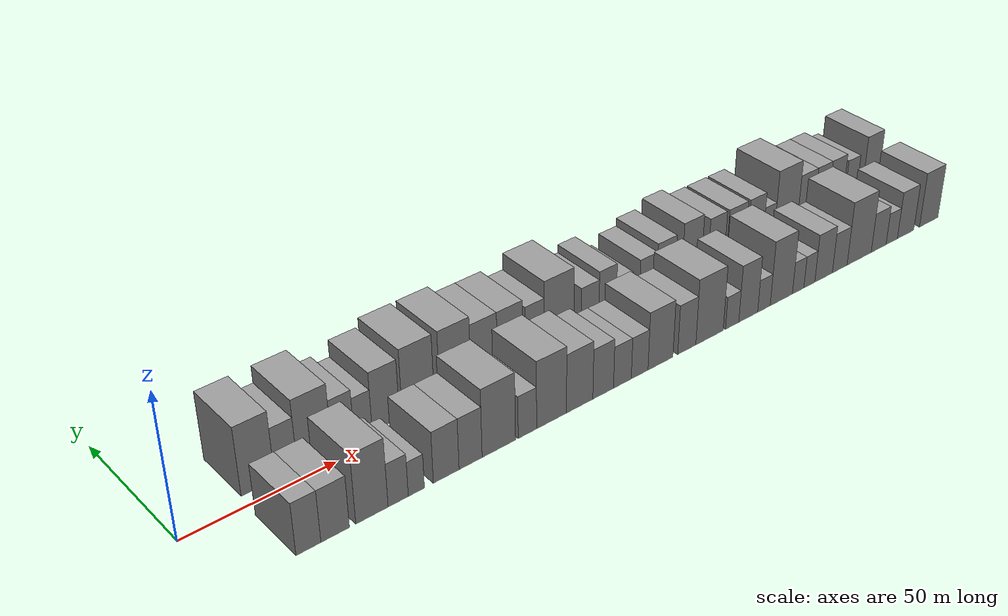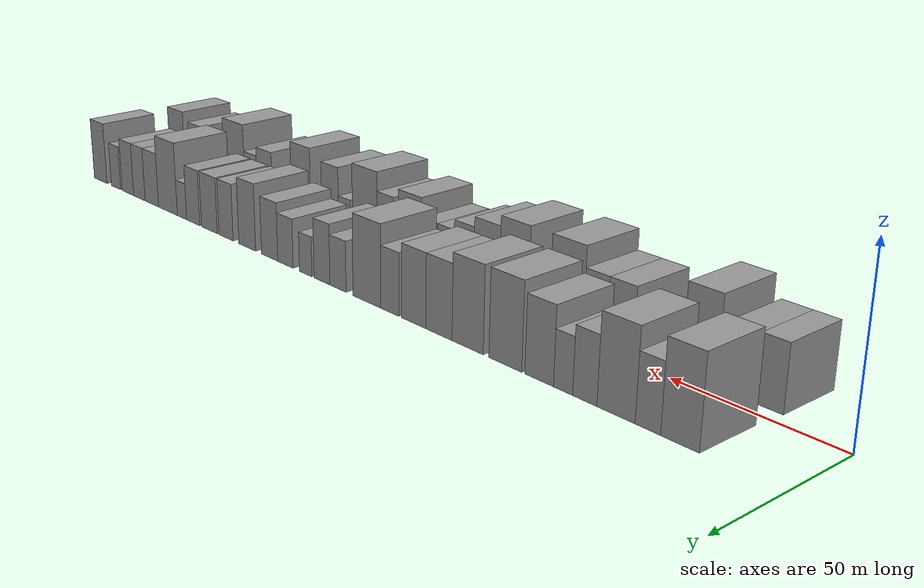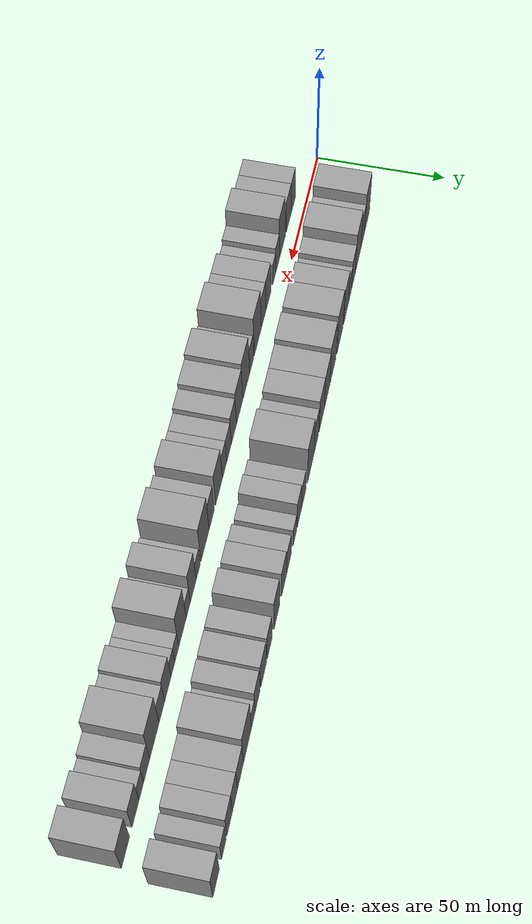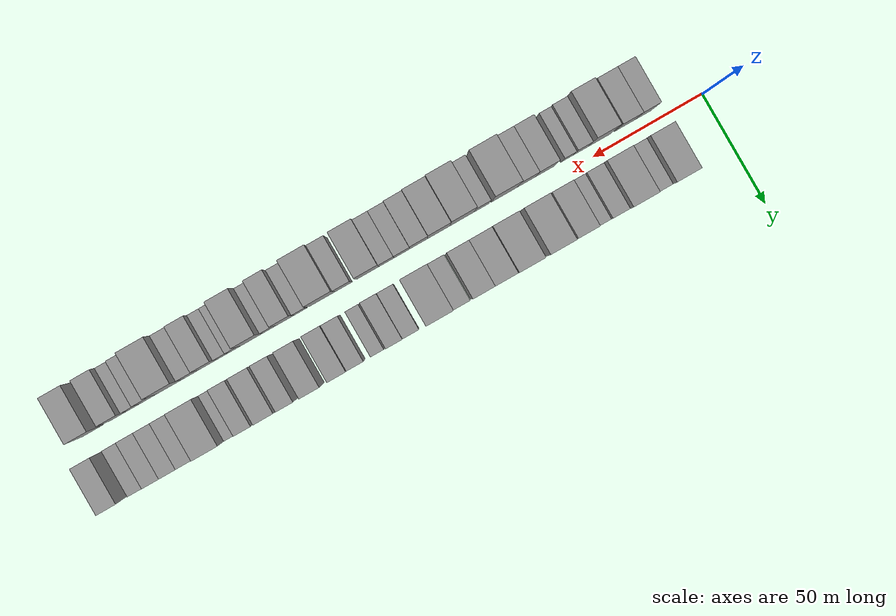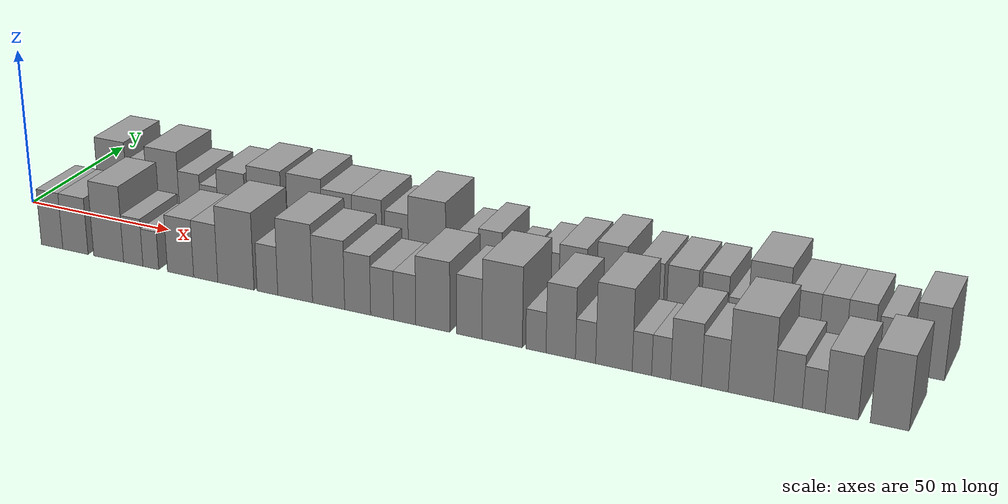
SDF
<sdf version="1.6">
 <world name="default">
  <scene>
   <sky><clouds><speed>12</speed></clouds></sky>
   <ambient>0.4 0.4 0.4 1</ambient>
   <background>0.7 0.7 0.7 1</background>
   <shadows>1</shadows>
  </scene>
  <gravity>0 0 -9.8066</gravity>
  <magnetic_field>6e-06 2.3e-05 -4.2e-05</magnetic_field>
  <physics default="0" name="default_physics" type="ode">
   <ode>
    <solver>
     <type>quick</type>
     <iters>10</iters>
     <sor>1.0</sor>
     <use_dynamic_moi_rescaling>0</use_dynamic_moi_rescaling>
    </solver>
    <constraints>
     <cfm>0</cfm>
     <erp>0.2</erp>
     <contact_max_correcting_vel>100</contact_max_correcting_vel>
     <contact_surface_layer>0.001</contact_surface_layer>
    </constraints>
   </ode>
   <max_step_size>0.004</max_step_size>
   <real_time_factor>1</real_time_factor>
   <real_time_update_rate>250</real_time_update_rate>
  </physics>
  <light name="sun" type="directional">
   <pose>0 0 10 0 0 0</pose>
   <diffuse>0.8 0.8 0.8 1</diffuse>
   <specular>0.2 0.2 0.2 1</specular>
   <attenuation>
    <range>1000</range>
    <constant>0.9</constant>
    <linear>0.01</linear>
    <quadratic>0.001</quadratic>
   </attenuation>
   <direction>-0.5 0.1 -0.9</direction>
  </light>
  <model name="building_1">
   <static>1</static>
   <pose>27.3456 14.5000 0 0.000000 0.000000 1.570796</pose>
   <link name="link">
    <pose>0 0 12.00 0 0 0</pose>
    <collision name="collision"><geometry><box><size>20.0000 10.6911 24.0000</size></box></geometry></collision>
    <visual name="visual">
     <cast_shadows>0</cast_shadows>
     <geometry><box><size>20.0000 10.6911 24.0000</size></box></geometry>
     <material>
      <script>
       <uri>model://grey_wall/materials/scripts</uri>
       <uri>model://grey_wall/materials/textures</uri>
       <name>vrc/grey_wall</name>
      </script>
     </material>
    </visual>
   </link>
  </model>
  <model name="building_2">
   <static>1</static>
   <pose>36.3356 14.5000 0 0.000000 0.000000 1.570796</pose>
   <link name="link">
    <pose>0 0 9.00 0 0 0</pose>
    <collision name="collision"><geometry><box><size>20.0000 7.2890 18.0000</size></box></geometry></collision>
    <visual name="visual">
     <cast_shadows>0</cast_shadows>
     <geometry><box><size>20.0000 7.2890 18.0000</size></box></geometry>
     <material>
      <script>
       <uri>model://grey_wall/materials/scripts</uri>
       <uri>model://grey_wall/materials/textures</uri>
       <name>vrc/grey_wall</name>
      </script>
     </material>
    </visual>
   </link>
  </model>
  <model name="building_3">
   <static>1</static>
   <pose>45.6819 14.5000 0 0.000000 0.000000 1.570796</pose>
   <link name="link">
    <pose>0 0 12.00 0 0 0</pose>
    <collision name="collision"><geometry><box><size>20.0000 11.4037 24.0000</size></box></geometry></collision>
    <visual name="visual">
     <cast_shadows>0</cast_shadows>
     <geometry><box><size>20.0000 11.4037 24.0000</size></box></geometry>
     <material>
      <script>
       <uri>model://grey_wall/materials/scripts</uri>
       <uri>model://grey_wall/materials/textures</uri>
       <name>vrc/grey_wall</name>
      </script>
     </material>
    </visual>
   </link>
  </model>
  <model name="building_4">
   <static>1</static>
   <pose>55.1578 14.5000 0 0.000000 0.000000 1.570796</pose>
   <link name="link">
    <pose>0 0 9.00 0 0 0</pose>
    <collision name="collision"><geometry><box><size>20.0000 7.5482 18.0000</size></box></geometry></collision>
    <visual name="visual">
     <cast_shadows>0</cast_shadows>
     <geometry><box><size>20.0000 7.5482 18.0000</size></box></geometry>
     <material>
      <script>
       <uri>model://grey_wall/materials/scripts</uri>
       <uri>model://grey_wall/materials/textures</uri>
       <name>vrc/grey_wall</name>
      </script>
     </material>
    </visual>
   </link>
  </model>
  <model name="building_5">
   <static>1</static>
   <pose>61.9954 14.5000 0 0.000000 0.000000 1.570796</pose>
   <link name="link">
    <pose>0 0 7.50 0 0 0</pose>
    <collision name="collision"><geometry><box><size>20.0000 6.1270 15.0000</size></box></geometry></collision>
    <visual name="visual">
     <cast_shadows>0</cast_shadows>
     <geometry><box><size>20.0000 6.1270 15.0000</size></box></geometry>
     <material>
      <script>
       <uri>model://grey_wall/materials/scripts</uri>
       <uri>model://grey_wall/materials/textures</uri>
       <name>vrc/grey_wall</name>
      </script>
     </material>
    </visual>
   </link>
  </model>
  <model name="building_6">
   <static>1</static>
   <pose>69.8138 14.5000 0 0.000000 0.000000 1.570796</pose>
   <link name="link">
    <pose>0 0 10.50 0 0 0</pose>
    <collision name="collision"><geometry><box><size>20.0000 9.5098 21.0000</size></box></geometry></collision>
    <visual name="visual">
     <cast_shadows>0</cast_shadows>
     <geometry><box><size>20.0000 9.5098 21.0000</size></box></geometry>
     <material>
      <script>
       <uri>model://grey_wall/materials/scripts</uri>
       <uri>model://grey_wall/materials/textures</uri>
       <name>vrc/grey_wall</name>
      </script>
     </material>
    </visual>
   </link>
  </model>
  <model name="building_7">
   <static>1</static>
   <pose>81.2880 14.5000 0 0.000000 0.000000 1.570796</pose>
   <link name="link">
    <pose>0 0 12.00 0 0 0</pose>
    <collision name="collision"><geometry><box><size>20.0000 11.4387 24.0000</size></box></geometry></collision>
    <visual name="visual">
     <cast_shadows>0</cast_shadows>
     <geometry><box><size>20.0000 11.4387 24.0000</size></box></geometry>
     <material>
      <script>
       <uri>model://grey_wall/materials/scripts</uri>
       <uri>model://grey_wall/materials/textures</uri>
       <name>vrc/grey_wall</name>
      </script>
     </material>
    </visual>
   </link>
  </model>
  <model name="building_8">
   <static>1</static>
   <pose>94.7496 14.5000 0 0.000000 0.000000 1.570796</pose>
   <link name="link">
    <pose>0 0 12.00 0 0 0</pose>
    <collision name="collision"><geometry><box><size>20.0000 11.4844 24.0000</size></box></geometry></collision>
    <visual name="visual">
     <cast_shadows>0</cast_shadows>
     <geometry><box><size>20.0000 11.4844 24.0000</size></box></geometry>
     <material>
      <script>
       <uri>model://grey_wall/materials/scripts</uri>
       <uri>model://grey_wall/materials/textures</uri>
       <name>vrc/grey_wall</name>
      </script>
     </material>
    </visual>
   </link>
  </model>
  <model name="building_9">
   <static>1</static>
   <pose>105.5024 14.5000 0 0.000000 0.000000 1.570796</pose>
   <link name="link">
    <pose>0 0 10.50 0 0 0</pose>
    <collision name="collision"><geometry><box><size>20.0000 10.0213 21.0000</size></box></geometry></collision>
    <visual name="visual">
     <cast_shadows>0</cast_shadows>
     <geometry><box><size>20.0000 10.0213 21.0000</size></box></geometry>
     <material>
      <script>
       <uri>model://grey_wall/materials/scripts</uri>
       <uri>model://grey_wall/materials/textures</uri>
       <name>vrc/grey_wall</name>
      </script>
     </material>
    </visual>
   </link>
  </model>
  <model name="building_10">
   <static>1</static>
   <pose>115.3661 14.5000 0 0.000000 0.000000 1.570796</pose>
   <link name="link">
    <pose>0 0 10.50 0 0 0</pose>
    <collision name="collision"><geometry><box><size>20.0000 9.7060 21.0000</size></box></geometry></collision>
    <visual name="visual">
     <cast_shadows>0</cast_shadows>
     <geometry><box><size>20.0000 9.7060 21.0000</size></box></geometry>
     <material>
      <script>
       <uri>model://grey_wall/materials/scripts</uri>
       <uri>model://grey_wall/materials/textures</uri>
       <name>vrc/grey_wall</name>
      </script>
     </material>
    </visual>
   </link>
  </model>
  <model name="building_11">
   <static>1</static>
   <pose>124.9737 14.5000 0 0.000000 0.000000 1.570796</pose>
   <link name="link">
    <pose>0 0 9.00 0 0 0</pose>
    <collision name="collision"><geometry><box><size>20.0000 7.5093 18.0000</size></box></geometry></collision>
    <visual name="visual">
     <cast_shadows>0</cast_shadows>
     <geometry><box><size>20.0000 7.5093 18.0000</size></box></geometry>
     <material>
      <script>
       <uri>model://grey_wall/materials/scripts</uri>
       <uri>model://grey_wall/materials/textures</uri>
       <name>vrc/grey_wall</name>
      </script>
     </material>
    </visual>
   </link>
  </model>
  <model name="building_12">
   <static>1</static>
   <pose>134.6609 14.5000 0 0.000000 0.000000 1.570796</pose>
   <link name="link">
    <pose>0 0 12.00 0 0 0</pose>
    <collision name="collision"><geometry><box><size>20.0000 11.8650 24.0000</size></box></geometry></collision>
    <visual name="visual">
     <cast_shadows>0</cast_shadows>
     <geometry><box><size>20.0000 11.8650 24.0000</size></box></geometry>
     <material>
      <script>
       <uri>model://grey_wall/materials/scripts</uri>
       <uri>model://grey_wall/materials/textures</uri>
       <name>vrc/grey_wall</name>
      </script>
     </material>
    </visual>
   </link>
  </model>
  <model name="building_13">
   <static>1</static>
   <pose>147.2266 14.5000 0 0.000000 0.000000 1.570796</pose>
   <link name="link">
    <pose>0 0 7.50 0 0 0</pose>
    <collision name="collision"><geometry><box><size>20.0000 7.2666 15.0000</size></box></geometry></collision>
    <visual name="visual">
     <cast_shadows>0</cast_shadows>
     <geometry><box><size>20.0000 7.2666 15.0000</size></box></geometry>
     <material>
      <script>
       <uri>model://grey_wall/materials/scripts</uri>
       <uri>model://grey_wall/materials/textures</uri>
       <name>vrc/grey_wall</name>
      </script>
     </material>
    </visual>
   </link>
  </model>
  <model name="building_14">
   <static>1</static>
   <pose>154.4987 14.5000 0 0.000000 0.000000 1.570796</pose>
   <link name="link">
    <pose>0 0 9.00 0 0 0</pose>
    <collision name="collision"><geometry><box><size>20.0000 7.2774 18.0000</size></box></geometry></collision>
    <visual name="visual">
     <cast_shadows>0</cast_shadows>
     <geometry><box><size>20.0000 7.2774 18.0000</size></box></geometry>
     <material>
      <script>
       <uri>model://grey_wall/materials/scripts</uri>
       <uri>model://grey_wall/materials/textures</uri>
       <name>vrc/grey_wall</name>
      </script>
     </material>
    </visual>
   </link>
  </model>
  <model name="building_15">
   <static>1</static>
   <pose>162.0869 14.5000 0 0.000000 0.000000 1.570796</pose>
   <link name="link">
    <pose>0 0 6.00 0 0 0</pose>
    <collision name="collision"><geometry><box><size>20.0000 5.8990 12.0000</size></box></geometry></collision>
    <visual name="visual">
     <cast_shadows>0</cast_shadows>
     <geometry><box><size>20.0000 5.8990 12.0000</size></box></geometry>
     <material>
      <script>
       <uri>model://grey_wall/materials/scripts</uri>
       <uri>model://grey_wall/materials/textures</uri>
       <name>vrc/grey_wall</name>
      </script>
     </material>
    </visual>
   </link>
  </model>
  <model name="building_16">
   <static>1</static>
   <pose>171.7738 14.5000 0 0.000000 0.000000 1.570796</pose>
   <link name="link">
    <pose>0 0 7.50 0 0 0</pose>
    <collision name="collision"><geometry><box><size>20.0000 7.4748 15.0000</size></box></geometry></collision>
    <visual name="visual">
     <cast_shadows>0</cast_shadows>
     <geometry><box><size>20.0000 7.4748 15.0000</size></box></geometry>
     <material>
      <script>
       <uri>model://grey_wall/materials/scripts</uri>
       <uri>model://grey_wall/materials/textures</uri>
       <name>vrc/grey_wall</name>
      </script>
     </material>
    </visual>
   </link>
  </model>
  <model name="building_17">
   <static>1</static>
   <pose>179.6057 14.5000 0 0.000000 0.000000 1.570796</pose>
   <link name="link">
    <pose>0 0 9.00 0 0 0</pose>
    <collision name="collision"><geometry><box><size>20.0000 8.1891 18.0000</size></box></geometry></collision>
    <visual name="visual">
     <cast_shadows>0</cast_shadows>
     <geometry><box><size>20.0000 8.1891 18.0000</size></box></geometry>
     <material>
      <script>
       <uri>model://grey_wall/materials/scripts</uri>
       <uri>model://grey_wall/materials/textures</uri>
       <name>vrc/grey_wall</name>
      </script>
     </material>
    </visual>
   </link>
  </model>
  <model name="building_18">
   <static>1</static>
   <pose>191.0919 14.5000 0 0.000000 0.000000 1.570796</pose>
   <link name="link">
    <pose>0 0 10.50 0 0 0</pose>
    <collision name="collision"><geometry><box><size>20.0000 8.7832 21.0000</size></box></geometry></collision>
    <visual name="visual">
     <cast_shadows>0</cast_shadows>
     <geometry><box><size>20.0000 8.7832 21.0000</size></box></geometry>
     <material>
      <script>
       <uri>model://grey_wall/materials/scripts</uri>
       <uri>model://grey_wall/materials/textures</uri>
       <name>vrc/grey_wall</name>
      </script>
     </material>
    </visual>
   </link>
  </model>
  <model name="building_19">
   <static>1</static>
   <pose>202.3033 14.5000 0 0.000000 0.000000 1.570796</pose>
   <link name="link">
    <pose>0 0 9.00 0 0 0</pose>
    <collision name="collision"><geometry><box><size>20.0000 7.6396 18.0000</size></box></geometry></collision>
    <visual name="visual">
     <cast_shadows>0</cast_shadows>
     <geometry><box><size>20.0000 7.6396 18.0000</size></box></geometry>
     <material>
      <script>
       <uri>model://grey_wall/materials/scripts</uri>
       <uri>model://grey_wall/materials/textures</uri>
       <name>vrc/grey_wall</name>
      </script>
     </material>
    </visual>
   </link>
  </model>
  <model name="building_20">
   <static>1</static>
   <pose>211.5195 14.5000 0 0.000000 0.000000 1.570796</pose>
   <link name="link">
    <pose>0 0 9.00 0 0 0</pose>
    <collision name="collision"><geometry><box><size>20.0000 8.7927 18.0000</size></box></geometry></collision>
    <visual name="visual">
     <cast_shadows>0</cast_shadows>
     <geometry><box><size>20.0000 8.7927 18.0000</size></box></geometry>
     <material>
      <script>
       <uri>model://grey_wall/materials/scripts</uri>
       <uri>model://grey_wall/materials/textures</uri>
       <name>vrc/grey_wall</name>
      </script>
     </material>
    </visual>
   </link>
  </model>
  <model name="building_21">
   <static>1</static>
   <pose>220.6847 14.5000 0 0.000000 0.000000 1.570796</pose>
   <link name="link">
    <pose>0 0 9.00 0 0 0</pose>
    <collision name="collision"><geometry><box><size>20.0000 7.5377 18.0000</size></box></geometry></collision>
    <visual name="visual">
     <cast_shadows>0</cast_shadows>
     <geometry><box><size>20.0000 7.5377 18.0000</size></box></geometry>
     <material>
      <script>
       <uri>model://grey_wall/materials/scripts</uri>
       <uri>model://grey_wall/materials/textures</uri>
       <name>vrc/grey_wall</name>
      </script>
     </material>
    </visual>
   </link>
  </model>
  <model name="building_22">
   <static>1</static>
   <pose>227.1869 14.5000 0 0.000000 0.000000 1.570796</pose>
   <link name="link">
    <pose>0 0 6.00 0 0 0</pose>
    <collision name="collision"><geometry><box><size>20.0000 5.4667 12.0000</size></box></geometry></collision>
    <visual name="visual">
     <cast_shadows>0</cast_shadows>
     <geometry><box><size>20.0000 5.4667 12.0000</size></box></geometry>
     <material>
      <script>
       <uri>model://grey_wall/materials/scripts</uri>
       <uri>model://grey_wall/materials/textures</uri>
       <name>vrc/grey_wall</name>
      </script>
     </material>
    </visual>
   </link>
  </model>
  <model name="building_23">
   <static>1</static>
   <pose>235.5753 14.5000 0 0.000000 0.000000 1.570796</pose>
   <link name="link">
    <pose>0 0 12.00 0 0 0</pose>
    <collision name="collision"><geometry><box><size>20.0000 11.3102 24.0000</size></box></geometry></collision>
    <visual name="visual">
     <cast_shadows>0</cast_shadows>
     <geometry><box><size>20.0000 11.3102 24.0000</size></box></geometry>
     <material>
      <script>
       <uri>model://grey_wall/materials/scripts</uri>
       <uri>model://grey_wall/materials/textures</uri>
       <name>vrc/grey_wall</name>
      </script>
     </material>
    </visual>
   </link>
  </model>
  <model name="building_24">
   <static>1</static>
   <pose>245.4057 14.5000 0 0.000000 0.000000 1.570796</pose>
   <link name="link">
    <pose>0 0 9.00 0 0 0</pose>
    <collision name="collision"><geometry><box><size>20.0000 8.3506 18.0000</size></box></geometry></collision>
    <visual name="visual">
     <cast_shadows>0</cast_shadows>
     <geometry><box><size>20.0000 8.3506 18.0000</size></box></geometry>
     <material>
      <script>
       <uri>model://grey_wall/materials/scripts</uri>
       <uri>model://grey_wall/materials/textures</uri>
       <name>vrc/grey_wall</name>
      </script>
     </material>
    </visual>
   </link>
  </model>
  <model name="building_25">
   <static>1</static>
   <pose>253.2059 14.5000 0 0.000000 0.000000 1.570796</pose>
   <link name="link">
    <pose>0 0 9.00 0 0 0</pose>
    <collision name="collision"><geometry><box><size>20.0000 7.2497 18.0000</size></box></geometry></collision>
    <visual name="visual">
     <cast_shadows>0</cast_shadows>
     <geometry><box><size>20.0000 7.2497 18.0000</size></box></geometry>
     <material>
      <script>
       <uri>model://grey_wall/materials/scripts</uri>
       <uri>model://grey_wall/materials/textures</uri>
       <name>vrc/grey_wall</name>
      </script>
     </material>
    </visual>
   </link>
  </model>
  <model name="building_26">
   <static>1</static>
   <pose>260.5482 14.5000 0 0.000000 0.000000 1.570796</pose>
   <link name="link">
    <pose>0 0 9.00 0 0 0</pose>
    <collision name="collision"><geometry><box><size>20.0000 7.4349 18.0000</size></box></geometry></collision>
    <visual name="visual">
     <cast_shadows>0</cast_shadows>
     <geometry><box><size>20.0000 7.4349 18.0000</size></box></geometry>
     <material>
      <script>
       <uri>model://grey_wall/materials/scripts</uri>
       <uri>model://grey_wall/materials/textures</uri>
       <name>vrc/grey_wall</name>
      </script>
     </material>
    </visual>
   </link>
  </model>
  <model name="building_27">
   <static>1</static>
   <pose>268.3773 14.5000 0 0.000000 0.000000 1.570796</pose>
   <link name="link">
    <pose>0 0 7.50 0 0 0</pose>
    <collision name="collision"><geometry><box><size>20.0000 6.2233 15.0000</size></box></geometry></collision>
    <visual name="visual">
     <cast_shadows>0</cast_shadows>
     <geometry><box><size>20.0000 6.2233 15.0000</size></box></geometry>
     <material>
      <script>
       <uri>model://grey_wall/materials/scripts</uri>
       <uri>model://grey_wall/materials/textures</uri>
       <name>vrc/grey_wall</name>
      </script>
     </material>
    </visual>
   </link>
  </model>
  <model name="building_28">
   <static>1</static>
   <pose>278.7567 14.5000 0 0.000000 0.000000 1.570796</pose>
   <link name="link">
    <pose>0 0 10.50 0 0 0</pose>
    <collision name="collision"><geometry><box><size>20.0000 8.5353 21.0000</size></box></geometry></collision>
    <visual name="visual">
     <cast_shadows>0</cast_shadows>
     <geometry><box><size>20.0000 8.5353 21.0000</size></box></geometry>
     <material>
      <script>
       <uri>model://grey_wall/materials/scripts</uri>
       <uri>model://grey_wall/materials/textures</uri>
       <name>vrc/grey_wall</name>
      </script>
     </material>
    </visual>
   </link>
  </model>
  <model name="building_29">
   <static>1</static>
   <pose>24.8519 -14.5000 0 0.000000 0.000000 1.570796</pose>
   <link name="link">
    <pose>0 0 9.00 0 0 0</pose>
    <collision name="collision"><geometry><box><size>20.0000 7.7039 18.0000</size></box></geometry></collision>
    <visual name="visual">
     <cast_shadows>0</cast_shadows>
     <geometry><box><size>20.0000 7.7039 18.0000</size></box></geometry>
     <material>
      <script>
       <uri>model://grey_wall/materials/scripts</uri>
       <uri>model://grey_wall/materials/textures</uri>
       <name>vrc/grey_wall</name>
      </script>
     </material>
    </visual>
   </link>
  </model>
  <model name="building_30">
   <static>1</static>
   <pose>33.1925 -14.5000 0 0.000000 0.000000 1.570796</pose>
   <link name="link">
    <pose>0 0 9.00 0 0 0</pose>
    <collision name="collision"><geometry><box><size>20.0000 8.9773 18.0000</size></box></geometry></collision>
    <visual name="visual">
     <cast_shadows>0</cast_shadows>
     <geometry><box><size>20.0000 8.9773 18.0000</size></box></geometry>
     <material>
      <script>
       <uri>model://grey_wall/materials/scripts</uri>
       <uri>model://grey_wall/materials/textures</uri>
       <name>vrc/grey_wall</name>
      </script>
     </material>
    </visual>
   </link>
  </model>
  <model name="building_31">
   <static>1</static>
   <pose>44.9147 -14.5000 0 0.000000 0.000000 1.570796</pose>
   <link name="link">
    <pose>0 0 12.00 0 0 0</pose>
    <collision name="collision"><geometry><box><size>20.0000 10.4670 24.0000</size></box></geometry></collision>
    <visual name="visual">
     <cast_shadows>0</cast_shadows>
     <geometry><box><size>20.0000 10.4670 24.0000</size></box></geometry>
     <material>
      <script>
       <uri>model://grey_wall/materials/scripts</uri>
       <uri>model://grey_wall/materials/textures</uri>
       <name>vrc/grey_wall</name>
      </script>
     </material>
    </visual>
   </link>
  </model>
  <model name="building_32">
   <static>1</static>
   <pose>53.4832 -14.5000 0 0.000000 0.000000 1.570796</pose>
   <link name="link">
    <pose>0 0 7.50 0 0 0</pose>
    <collision name="collision"><geometry><box><size>20.0000 6.6701 15.0000</size></box></geometry></collision>
    <visual name="visual">
     <cast_shadows>0</cast_shadows>
     <geometry><box><size>20.0000 6.6701 15.0000</size></box></geometry>
     <material>
      <script>
       <uri>model://grey_wall/materials/scripts</uri>
       <uri>model://grey_wall/materials/textures</uri>
       <name>vrc/grey_wall</name>
      </script>
     </material>
    </visual>
   </link>
  </model>
  <model name="building_33">
   <static>1</static>
   <pose>59.5274 -14.5000 0 0.000000 0.000000 1.570796</pose>
   <link name="link">
    <pose>0 0 6.00 0 0 0</pose>
    <collision name="collision"><geometry><box><size>20.0000 5.4182 12.0000</size></box></geometry></collision>
    <visual name="visual">
     <cast_shadows>0</cast_shadows>
     <geometry><box><size>20.0000 5.4182 12.0000</size></box></geometry>
     <material>
      <script>
       <uri>model://grey_wall/materials/scripts</uri>
       <uri>model://grey_wall/materials/textures</uri>
       <name>vrc/grey_wall</name>
      </script>
     </material>
    </visual>
   </link>
  </model>
  <model name="building_34">
   <static>1</static>
   <pose>69.6573 -14.5000 0 0.000000 0.000000 1.570796</pose>
   <link name="link">
    <pose>0 0 9.00 0 0 0</pose>
    <collision name="collision"><geometry><box><size>20.0000 8.8416 18.0000</size></box></geometry></collision>
    <visual name="visual">
     <cast_shadows>0</cast_shadows>
     <geometry><box><size>20.0000 8.8416 18.0000</size></box></geometry>
     <material>
      <script>
       <uri>model://grey_wall/materials/scripts</uri>
       <uri>model://grey_wall/materials/textures</uri>
       <name>vrc/grey_wall</name>
      </script>
     </material>
    </visual>
   </link>
  </model>
  <model name="building_35">
   <static>1</static>
   <pose>78.1103 -14.5000 0 0.000000 0.000000 1.570796</pose>
   <link name="link">
    <pose>0 0 9.00 0 0 0</pose>
    <collision name="collision"><geometry><box><size>20.0000 8.0645 18.0000</size></box></geometry></collision>
    <visual name="visual">
     <cast_shadows>0</cast_shadows>
     <geometry><box><size>20.0000 8.0645 18.0000</size></box></geometry>
     <material>
      <script>
       <uri>model://grey_wall/materials/scripts</uri>
       <uri>model://grey_wall/materials/textures</uri>
       <name>vrc/grey_wall</name>
      </script>
     </material>
    </visual>
   </link>
  </model>
  <model name="building_36">
   <static>1</static>
   <pose>88.1209 -14.5000 0 0.000000 0.000000 1.570796</pose>
   <link name="link">
    <pose>0 0 12.00 0 0 0</pose>
    <collision name="collision"><geometry><box><size>20.0000 11.9566 24.0000</size></box></geometry></collision>
    <visual name="visual">
     <cast_shadows>0</cast_shadows>
     <geometry><box><size>20.0000 11.9566 24.0000</size></box></geometry>
     <material>
      <script>
       <uri>model://grey_wall/materials/scripts</uri>
       <uri>model://grey_wall/materials/textures</uri>
       <name>vrc/grey_wall</name>
      </script>
     </material>
    </visual>
   </link>
  </model>
  <model name="building_37">
   <static>1</static>
   <pose>98.4643 -14.5000 0 0.000000 0.000000 1.570796</pose>
   <link name="link">
    <pose>0 0 7.50 0 0 0</pose>
    <collision name="collision"><geometry><box><size>20.0000 6.7302 15.0000</size></box></geometry></collision>
    <visual name="visual">
     <cast_shadows>0</cast_shadows>
     <geometry><box><size>20.0000 6.7302 15.0000</size></box></geometry>
     <material>
      <script>
       <uri>model://grey_wall/materials/scripts</uri>
       <uri>model://grey_wall/materials/textures</uri>
       <name>vrc/grey_wall</name>
      </script>
     </material>
    </visual>
   </link>
  </model>
  <model name="building_38">
   <static>1</static>
   <pose>107.4012 -14.5000 0 0.000000 0.000000 1.570796</pose>
   <link name="link">
    <pose>0 0 12.00 0 0 0</pose>
    <collision name="collision"><geometry><box><size>20.0000 11.1436 24.0000</size></box></geometry></collision>
    <visual name="visual">
     <cast_shadows>0</cast_shadows>
     <geometry><box><size>20.0000 11.1436 24.0000</size></box></geometry>
     <material>
      <script>
       <uri>model://grey_wall/materials/scripts</uri>
       <uri>model://grey_wall/materials/textures</uri>
       <name>vrc/grey_wall</name>
      </script>
     </material>
    </visual>
   </link>
  </model>
  <model name="building_39">
   <static>1</static>
   <pose>118.0522 -14.5000 0 0.000000 0.000000 1.570796</pose>
   <link name="link">
    <pose>0 0 10.50 0 0 0</pose>
    <collision name="collision"><geometry><box><size>20.0000 10.1582 21.0000</size></box></geometry></collision>
    <visual name="visual">
     <cast_shadows>0</cast_shadows>
     <geometry><box><size>20.0000 10.1582 21.0000</size></box></geometry>
     <material>
      <script>
       <uri>model://grey_wall/materials/scripts</uri>
       <uri>model://grey_wall/materials/textures</uri>
       <name>vrc/grey_wall</name>
      </script>
     </material>
    </visual>
   </link>
  </model>
  <model name="building_40">
   <static>1</static>
   <pose>127.1790 -14.5000 0 0.000000 0.000000 1.570796</pose>
   <link name="link">
    <pose>0 0 9.00 0 0 0</pose>
    <collision name="collision"><geometry><box><size>20.0000 8.0954 18.0000</size></box></geometry></collision>
    <visual name="visual">
     <cast_shadows>0</cast_shadows>
     <geometry><box><size>20.0000 8.0954 18.0000</size></box></geometry>
     <material>
      <script>
       <uri>model://grey_wall/materials/scripts</uri>
       <uri>model://grey_wall/materials/textures</uri>
       <name>vrc/grey_wall</name>
      </script>
     </material>
    </visual>
   </link>
  </model>
  <model name="building_41">
   <static>1</static>
   <pose>134.7615 -14.5000 0 0.000000 0.000000 1.570796</pose>
   <link name="link">
    <pose>0 0 7.50 0 0 0</pose>
    <collision name="collision"><geometry><box><size>20.0000 7.0697 15.0000</size></box></geometry></collision>
    <visual name="visual">
     <cast_shadows>0</cast_shadows>
     <geometry><box><size>20.0000 7.0697 15.0000</size></box></geometry>
     <material>
      <script>
       <uri>model://grey_wall/materials/scripts</uri>
       <uri>model://grey_wall/materials/textures</uri>
       <name>vrc/grey_wall</name>
      </script>
     </material>
    </visual>
   </link>
  </model>
  <model name="building_42">
   <static>1</static>
   <pose>141.6743 -14.5000 0 0.000000 0.000000 1.570796</pose>
   <link name="link">
    <pose>0 0 7.50 0 0 0</pose>
    <collision name="collision"><geometry><box><size>20.0000 6.7558 15.0000</size></box></geometry></collision>
    <visual name="visual">
     <cast_shadows>0</cast_shadows>
     <geometry><box><size>20.0000 6.7558 15.0000</size></box></geometry>
     <material>
      <script>
       <uri>model://grey_wall/materials/scripts</uri>
       <uri>model://grey_wall/materials/textures</uri>
       <name>vrc/grey_wall</name>
      </script>
     </material>
    </visual>
   </link>
  </model>
  <model name="building_43">
   <static>1</static>
   <pose>150.1881 -14.5000 0 0.000000 0.000000 1.570796</pose>
   <link name="link">
    <pose>0 0 10.50 0 0 0</pose>
    <collision name="collision"><geometry><box><size>20.0000 10.2719 21.0000</size></box></geometry></collision>
    <visual name="visual">
     <cast_shadows>0</cast_shadows>
     <geometry><box><size>20.0000 10.2719 21.0000</size></box></geometry>
     <material>
      <script>
       <uri>model://grey_wall/materials/scripts</uri>
       <uri>model://grey_wall/materials/textures</uri>
       <name>vrc/grey_wall</name>
      </script>
     </material>
    </visual>
   </link>
  </model>
  <model name="building_44">
   <static>1</static>
   <pose>161.1236 -14.5000 0 0.000000 0.000000 1.570796</pose>
   <link name="link">
    <pose>0 0 9.00 0 0 0</pose>
    <collision name="collision"><geometry><box><size>20.0000 7.5992 18.0000</size></box></geometry></collision>
    <visual name="visual">
     <cast_shadows>0</cast_shadows>
     <geometry><box><size>20.0000 7.5992 18.0000</size></box></geometry>
     <material>
      <script>
       <uri>model://grey_wall/materials/scripts</uri>
       <uri>model://grey_wall/materials/textures</uri>
       <name>vrc/grey_wall</name>
      </script>
     </material>
    </visual>
   </link>
  </model>
  <model name="building_45">
   <static>1</static>
   <pose>170.8126 -14.5000 0 0.000000 0.000000 1.570796</pose>
   <link name="link">
    <pose>0 0 12.00 0 0 0</pose>
    <collision name="collision"><geometry><box><size>20.0000 11.7789 24.0000</size></box></geometry></collision>
    <visual name="visual">
     <cast_shadows>0</cast_shadows>
     <geometry><box><size>20.0000 11.7789 24.0000</size></box></geometry>
     <material>
      <script>
       <uri>model://grey_wall/materials/scripts</uri>
       <uri>model://grey_wall/materials/textures</uri>
       <name>vrc/grey_wall</name>
      </script>
     </material>
    </visual>
   </link>
  </model>
  <model name="building_46">
   <static>1</static>
   <pose>180.6205 -14.5000 0 0.000000 0.000000 1.570796</pose>
   <link name="link">
    <pose>0 0 6.00 0 0 0</pose>
    <collision name="collision"><geometry><box><size>20.0000 5.8368 12.0000</size></box></geometry></collision>
    <visual name="visual">
     <cast_shadows>0</cast_shadows>
     <geometry><box><size>20.0000 5.8368 12.0000</size></box></geometry>
     <material>
      <script>
       <uri>model://grey_wall/materials/scripts</uri>
       <uri>model://grey_wall/materials/textures</uri>
       <name>vrc/grey_wall</name>
      </script>
     </material>
    </visual>
   </link>
  </model>
  <model name="building_47">
   <static>1</static>
   <pose>187.7438 -14.5000 0 0.000000 0.000000 1.570796</pose>
   <link name="link">
    <pose>0 0 10.50 0 0 0</pose>
    <collision name="collision"><geometry><box><size>20.0000 8.4099 21.0000</size></box></geometry></collision>
    <visual name="visual">
     <cast_shadows>0</cast_shadows>
     <geometry><box><size>20.0000 8.4099 21.0000</size></box></geometry>
     <material>
      <script>
       <uri>model://grey_wall/materials/scripts</uri>
       <uri>model://grey_wall/materials/textures</uri>
       <name>vrc/grey_wall</name>
      </script>
     </material>
    </visual>
   </link>
  </model>
  <model name="building_48">
   <static>1</static>
   <pose>194.7866 -14.5000 0 0.000000 0.000000 1.570796</pose>
   <link name="link">
    <pose>0 0 6.00 0 0 0</pose>
    <collision name="collision"><geometry><box><size>20.0000 5.6756 12.0000</size></box></geometry></collision>
    <visual name="visual">
     <cast_shadows>0</cast_shadows>
     <geometry><box><size>20.0000 5.6756 12.0000</size></box></geometry>
     <material>
      <script>
       <uri>model://grey_wall/materials/scripts</uri>
       <uri>model://grey_wall/materials/textures</uri>
       <name>vrc/grey_wall</name>
      </script>
     </material>
    </visual>
   </link>
  </model>
  <model name="building_49">
   <static>1</static>
   <pose>202.7221 -14.5000 0 0.000000 0.000000 1.570796</pose>
   <link name="link">
    <pose>0 0 12.00 0 0 0</pose>
    <collision name="collision"><geometry><box><size>20.0000 10.1953 24.0000</size></box></geometry></collision>
    <visual name="visual">
     <cast_shadows>0</cast_shadows>
     <geometry><box><size>20.0000 10.1953 24.0000</size></box></geometry>
     <material>
      <script>
       <uri>model://grey_wall/materials/scripts</uri>
       <uri>model://grey_wall/materials/textures</uri>
       <name>vrc/grey_wall</name>
      </script>
     </material>
    </visual>
   </link>
  </model>
  <model name="building_50">
   <static>1</static>
   <pose>210.4950 -14.5000 0 0.000000 0.000000 1.570796</pose>
   <link name="link">
    <pose>0 0 6.00 0 0 0</pose>
    <collision name="collision"><geometry><box><size>20.0000 5.3507 12.0000</size></box></geometry></collision>
    <visual name="visual">
     <cast_shadows>0</cast_shadows>
     <geometry><box><size>20.0000 5.3507 12.0000</size></box></geometry>
     <material>
      <script>
       <uri>model://grey_wall/materials/scripts</uri>
       <uri>model://grey_wall/materials/textures</uri>
       <name>vrc/grey_wall</name>
      </script>
     </material>
    </visual>
   </link>
  </model>
  <model name="building_51">
   <static>1</static>
   <pose>215.7557 -14.5000 0 0.000000 0.000000 1.570796</pose>
   <link name="link">
    <pose>0 0 6.00 0 0 0</pose>
    <collision name="collision"><geometry><box><size>20.0000 5.1707 12.0000</size></box></geometry></collision>
    <visual name="visual">
     <cast_shadows>0</cast_shadows>
     <geometry><box><size>20.0000 5.1707 12.0000</size></box></geometry>
     <material>
      <script>
       <uri>model://grey_wall/materials/scripts</uri>
       <uri>model://grey_wall/materials/textures</uri>
       <name>vrc/grey_wall</name>
      </script>
     </material>
    </visual>
   </link>
  </model>
  <model name="building_52">
   <static>1</static>
   <pose>222.5331 -14.5000 0 0.000000 0.000000 1.570796</pose>
   <link name="link">
    <pose>0 0 9.00 0 0 0</pose>
    <collision name="collision"><geometry><box><size>20.0000 8.3840 18.0000</size></box></geometry></collision>
    <visual name="visual">
     <cast_shadows>0</cast_shadows>
     <geometry><box><size>20.0000 8.3840 18.0000</size></box></geometry>
     <material>
      <script>
       <uri>model://grey_wall/materials/scripts</uri>
       <uri>model://grey_wall/materials/textures</uri>
       <name>vrc/grey_wall</name>
      </script>
     </material>
    </visual>
   </link>
  </model>
  <model name="building_53">
   <static>1</static>
   <pose>230.2978 -14.5000 0 0.000000 0.000000 1.570796</pose>
   <link name="link">
    <pose>0 0 7.50 0 0 0</pose>
    <collision name="collision"><geometry><box><size>20.0000 7.1454 15.0000</size></box></geometry></collision>
    <visual name="visual">
     <cast_shadows>0</cast_shadows>
     <geometry><box><size>20.0000 7.1454 15.0000</size></box></geometry>
     <material>
      <script>
       <uri>model://grey_wall/materials/scripts</uri>
       <uri>model://grey_wall/materials/textures</uri>
       <name>vrc/grey_wall</name>
      </script>
     </material>
    </visual>
   </link>
  </model>
  <model name="building_54">
   <static>1</static>
   <pose>239.8529 -14.5000 0 0.000000 0.000000 1.570796</pose>
   <link name="link">
    <pose>0 0 12.00 0 0 0</pose>
    <collision name="collision"><geometry><box><size>20.0000 11.9648 24.0000</size></box></geometry></collision>
    <visual name="visual">
     <cast_shadows>0</cast_shadows>
     <geometry><box><size>20.0000 11.9648 24.0000</size></box></geometry>
     <material>
      <script>
       <uri>model://grey_wall/materials/scripts</uri>
       <uri>model://grey_wall/materials/textures</uri>
       <name>vrc/grey_wall</name>
      </script>
     </material>
    </visual>
   </link>
  </model>
  <model name="building_55">
   <static>1</static>
   <pose>249.5660 -14.5000 0 0.000000 0.000000 1.570796</pose>
   <link name="link">
    <pose>0 0 7.50 0 0 0</pose>
    <collision name="collision"><geometry><box><size>20.0000 7.4614 15.0000</size></box></geometry></collision>
    <visual name="visual">
     <cast_shadows>0</cast_shadows>
     <geometry><box><size>20.0000 7.4614 15.0000</size></box></geometry>
     <material>
      <script>
       <uri>model://grey_wall/materials/scripts</uri>
       <uri>model://grey_wall/materials/textures</uri>
       <name>vrc/grey_wall</name>
      </script>
     </material>
    </visual>
   </link>
  </model>
  <model name="building_56">
   <static>1</static>
   <pose>256.2039 -14.5000 0 0.000000 0.000000 1.570796</pose>
   <link name="link">
    <pose>0 0 6.00 0 0 0</pose>
    <collision name="collision"><geometry><box><size>20.0000 5.8143 12.0000</size></box></geometry></collision>
    <visual name="visual">
     <cast_shadows>0</cast_shadows>
     <geometry><box><size>20.0000 5.8143 12.0000</size></box></geometry>
     <material>
      <script>
       <uri>model://grey_wall/materials/scripts</uri>
       <uri>model://grey_wall/materials/textures</uri>
       <name>vrc/grey_wall</name>
      </script>
     </material>
    </visual>
   </link>
  </model>
  <model name="building_57">
   <static>1</static>
   <pose>263.3496 -14.5000 0 0.000000 0.000000 1.570796</pose>
   <link name="link">
    <pose>0 0 9.00 0 0 0</pose>
    <collision name="collision"><geometry><box><size>20.0000 8.4772 18.0000</size></box></geometry></collision>
    <visual name="visual">
     <cast_shadows>0</cast_shadows>
     <geometry><box><size>20.0000 8.4772 18.0000</size></box></geometry>
     <material>
      <script>
       <uri>model://grey_wall/materials/scripts</uri>
       <uri>model://grey_wall/materials/textures</uri>
       <name>vrc/grey_wall</name>
      </script>
     </material>
    </visual>
   </link>
  </model>
  <model name="building_58">
   <static>1</static>
   <pose>275.4524 -14.5000 0 0.000000 0.000000 1.570796</pose>
   <link name="link">
    <pose>0 0 10.50 0 0 0</pose>
    <collision name="collision"><geometry><box><size>20.0000 9.7284 21.0000</size></box></geometry></collision>
    <visual name="visual">
     <cast_shadows>0</cast_shadows>
     <geometry><box><size>20.0000 9.7284 21.0000</size></box></geometry>
     <material>
      <script>
       <uri>model://grey_wall/materials/scripts</uri>
       <uri>model://grey_wall/materials/textures</uri>
       <name>vrc/grey_wall</name>
      </script>
     </material>
    </visual>
   </link>
  </model>
 </world>
</sdf>
